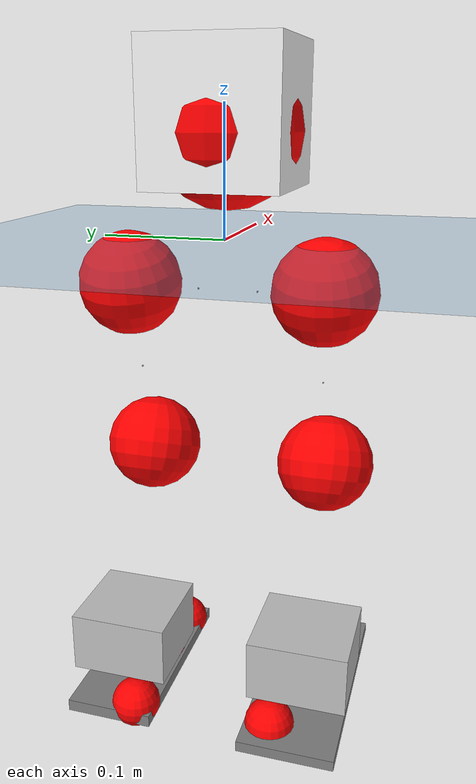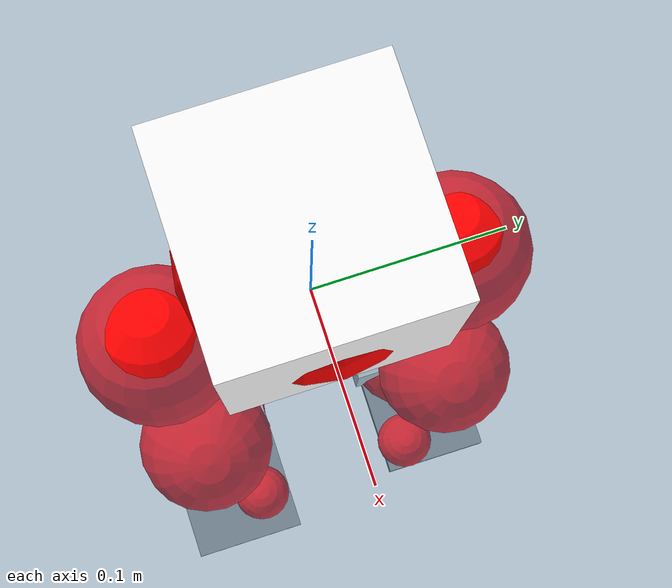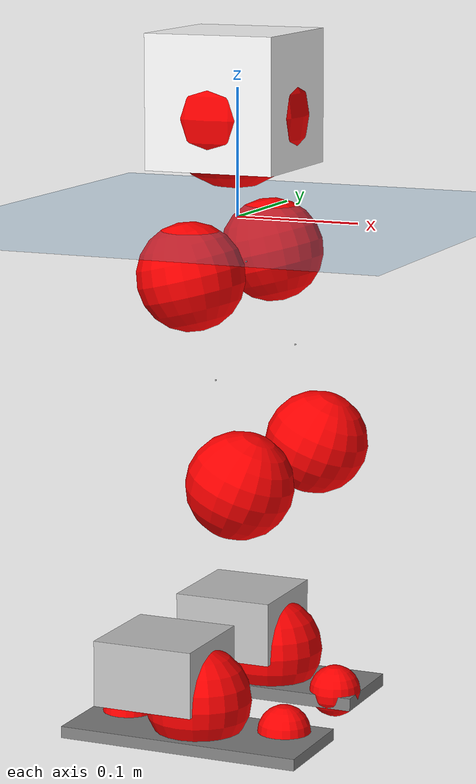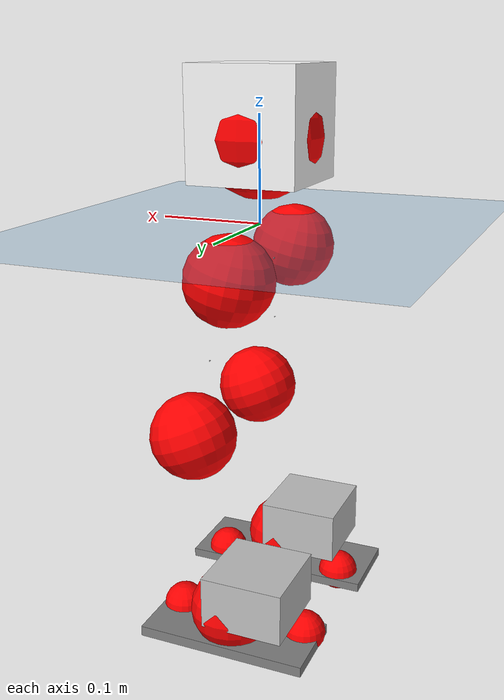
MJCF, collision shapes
<mujoco model="pi_12dof_release_v1">
  <compiler angle="radian" assetdir="assets" balanceinertia="true" inertiafromgeom="false"/>

  <option timestep="0.005" density="1.2" viscosity="2e-05"/>

  <size nkey="1"/>

  <visual>
    <quality shadowsize="8192"/>
    <map shadowclip="0.5"/>
  </visual>

  <default>
    <default class="/">
      <joint armature="0.01" damping="0.01" frictionloss="0.01"/>
      <geom contype="0" conaffinity="0" group="1" solref="-1000 -80"/>
      <site size="0.01 0.005 0.005" group="5"/>
      <general forcelimited="true" biastype="affine" gainprm="20" biasprm="0 -20 -0.5"/>
      <default class="foot">
        <geom size="0.0845 0.036 0.005" type="box" condim="6" group="4" priority="1" friction="0.9 0.2 0.2" solimp="0.015 1 0.005"/>
      </default>
      <default class="reward_collision_sphere">
        <geom group="5" rgba="1 0 0 1"/>
      </default>
    </default>
  </default>

  <asset>
    <texture type="skybox" colorspace="auto" name="//unnamed_texture_0" builtin="gradient" rgb1="0.95 0.95 0.95" rgb2="0.95 0.95 0.95" width="100" height="600"/>
    <texture type="2d" colorspace="auto" name="texplane" builtin="checker" rgb1="0.345 0.575 0.748" rgb2="0.345 0.575 0.748" markrgb="1 1 1" width="512" height="512"/>
    <material name="MatPlane" class="/" texture="texplane" texuniform="true" texrepeat="2 2" specular="0.9"/>
    <mesh name="baselink_1" class="/" file="baselink_1.STL"/>
    <mesh name="r_hip_pitch_link" class="/" file="r_hip_pitch_link.STL"/>
    <mesh name="r_hip_roll_link" class="/" file="r_hip_roll_link.STL"/>
    <mesh name="r_thigh_link" class="/" file="r_thigh_link.STL"/>
    <mesh name="r_calf_link" class="/" file="r_calf_link.STL"/>
    <mesh name="r_ankle_pitch_link" class="/" file="r_ankle_pitch_link.STL"/>
    <mesh name="r_ankle_roll_link" class="/" file="r_ankle_roll_link.STL"/>
    <mesh name="l_hip_pitch_link" class="/" file="l_hip_pitch_link.STL"/>
    <mesh name="l_hip_roll_link" class="/" file="l_hip_roll_link.STL"/>
    <mesh name="l_thigh_link" class="/" file="l_thigh_link.STL"/>
    <mesh name="l_calf_link" class="/" file="l_calf_link.STL"/>
    <mesh name="l_ankle_pitch_link" class="/" file="l_ankle_pitch_link.STL"/>
    <mesh name="l_ankle_roll_link" class="/" file="l_ankle_roll_link.STL"/>
  </asset>

  <worldbody>
    <geom name="floor" class="/" size="100 100 0.125" type="plane" group="0" material="MatPlane"/>
    <light name="toplight_shadow" class="/" pos="0 0 5" dir="0.0990148 0.0990148 -0.990148" type="directional" ambient="0.04 0.04 0.04" diffuse="0.55 0.55 0.55" specular="0.12 0.12 0.12"/>
    <light name="toplight_fill" class="/" pos="0 0 5" dir="0.0990148 0.0990148 -0.990148" type="directional" castshadow="false" ambient="0.04 0.04 0.04" diffuse="0.3 0.3 0.3" specular="0.08 0.08 0.08"/>
    <body name="trunk" pos="-0.000915858 -0.00270212 -0.00218126" quat="0.999999 0.0010496 -0.000369813 0.000136003">
      <inertial pos="0.00185027 -0.0017601 0.0478901" quat="0.692454 0.0165839 0.00235781 0.721267" mass="2.49759" diaginertia="0.00901548 0.00754184 0.00950518"/>
      <joint name="//unnamed_joint_0" type="free"/>
      <geom name="//unnamed_geom_1" class="/" type="mesh" density="0" rgba="1 1 1 1" mesh="baselink_1"/>
      <geom name="//unnamed_geom_2" class="/" size="0.0521261 0.0521261 0.0521261" pos="0 0 0.0939218" type="box" rgba="1 1 1 1"/>
      <geom name="//unnamed_geom_3" class="reward_collision_sphere" size="0.0573387" pos="0 0 0.0821816"/>
      <site name="imu" class="/" pos="-0.00299067 0.00993672 -0.00574618" size="0.0104252"/>
      <camera name="track" class="/" pos="0 -1.93411 0" quat="0.707107 0.707107 0 0" mode="trackcom"/>
      <camera name="ego_camera" class="/" pos="0.0739866 0 0.211324" quat="-0.5 -0.5 0.5 0.5"/>
      <body name="r_hip_pitch_link" pos="-0.00245439 -0.0249814 -0.0356584" quat="0.992163 0.000288748 -0.124952 -0.000305112">
        <inertial pos="0.000634152 -0.056919 -0.00270571" quat="-0.0169764 0.704149 -0.0319921 0.709128" mass="0.431979" diaginertia="0.00010405 8.34553e-05 0.000196072"/>
        <joint name="r_hip_pitch_joint" class="/" pos="0 0 0" axis="-0.00272468 -0.999926 -0.0118657" stiffness="0.00413573" range="-1.75198 1.28142" armature="0.0102919" damping="0.00537733" frictionloss="0.0118158"/>
        <geom name="//unnamed_geom_4" class="/" type="mesh" density="0" rgba="0.75294 0.75294 0.75294 1" mesh="r_hip_pitch_link"/>
        <geom name="//unnamed_geom_5" class="/" size="0.000521261 0.000521261 0.000521261" type="box" rgba="0.75294 0.75294 0.75294 1"/>
        <body name="r_hip_roll_link" pos="0.00086446 -0.05306 0.00239376" quat="1 -1.41009e-05 4.69032e-05 7.5616e-06">
          <inertial pos="-0.000921932 -0.00112371 -0.0698078" quat="0.709476 -0.0796803 -0.0817231 0.695425" mass="0.437598" diaginertia="0.000317724 0.000239734 0.000280348"/>
          <joint name="r_hip_roll_joint" class="/" pos="0 0 0" axis="-1 0.000345106 0.00075155" stiffness="0.0102904" range="-0.163397 0.550941" armature="0.00956256" damping="0" frictionloss="0.0100468"/>
          <geom name="//unnamed_geom_6" class="/" type="mesh" density="0" rgba="0.75294 0.75294 0.75294 1" mesh="r_hip_roll_link"/>
          <geom name="//unnamed_geom_7" class="/" size="0.000521261 0.000521261 0.000521261" type="box" rgba="0.75294 0.75294 0.75294 1"/>
          <geom name="//unnamed_geom_8" class="reward_collision_sphere" size="0.0417009"/>
          <body name="r_thigh_link" pos="-0.000315209 0.0015933 -0.0805545" quat="0.999999 -0.000994634 0.000220951 0.000922213">
            <inertial pos="0.0029509 0.00337521 -0.0582605" quat="0.742982 0.669309 -0.00203675 5.18458e-05" mass="0.130038" diaginertia="0.000114597 8.29852e-05 0.000125019"/>
            <joint name="r_thigh_joint" class="/" pos="0 0 0" axis="0.00197773 0.0106246 -0.999942" stiffness="0.00217943" range="-0.297988 0.652233" armature="0.00939482" damping="0.0178535" frictionloss="0.0109471"/>
            <geom name="//unnamed_geom_9" class="/" type="mesh" density="0" rgba="0.75294 0.75294 0.75294 1" mesh="r_thigh_link"/>
            <geom name="//unnamed_geom_10" class="/" size="0.000521261 0.000521261 0.000521261" type="box" rgba="0.75294 0.75294 0.75294 1"/>
            <body name="r_calf_link" pos="-2.19256e-05 -0.00107086 -0.0822326" quat="0.947383 5.0174e-05 0.320102 -0.00100694">
              <inertial pos="0.00202926 0.000536024 -0.0819497" quat="0.999955 -0.00758706 0.000514378 0.00560215" mass="0.948071" diaginertia="0.00341615 0.00304243 0.00038835"/>
              <joint name="r_calf_joint" class="/" pos="0 0 0" axis="0.00203837 -0.999986 0.00484055" stiffness="0.00368734" range="-1.63241 0.610763" armature="0.0105465" damping="0.00793619" frictionloss="0.0105843"/>
              <geom name="//unnamed_geom_11" class="/" type="mesh" density="0" rgba="0.75294 0.75294 0.75294 1" mesh="r_calf_link"/>
              <geom name="//unnamed_geom_12" class="/" size="0.000521261 0.000521261 0.000521261" type="box" rgba="0.75294 0.75294 0.75294 1"/>
              <geom name="//unnamed_geom_13" class="reward_collision_sphere" size="0.0417009"/>
              <body name="r_ankle_pitch_link" pos="-0.000150076 -0.000204952 -0.162637" quat="0.980076 -0.000541755 -0.198622 -0.000208055">
                <inertial pos="0.00205214 0.00317378 -0.00161102" quat="0.00439736 0.706515 -0.00355261 0.707676" mass="0.193796" diaginertia="0.000281392 0.000177363 0.000253166"/>
                <joint name="r_ankle_pitch_joint" class="/" pos="0 0 0" axis="-0.00217525 -0.999997 0.00133003" range="-1.34263 0.548944" armature="0.0106494" damping="0.0145404" frictionloss="0.00899245"/>
                <geom name="//unnamed_geom_14" class="/" type="mesh" density="0" rgba="0.75294 0.75294 0.75294 1" mesh="r_ankle_pitch_link"/>
                <geom name="//unnamed_geom_15" class="/" size="0.0406583 0.0417009 0.026063" type="box" rgba="0.75294 0.75294 0.75294 1"/>
                <body name="r_ankle_roll_link" pos="0.0773801 0.00177789 -0.000198592" quat="1 -6.11928e-05 -2.59863e-05 -1.83478e-05">
                  <inertial pos="-0.0204934 0.000225876 -0.0182736" quat="0.560887 0.430543 0.435516 0.557104" mass="0.611718" diaginertia="0.00111253 0.000866317 0.000641598"/>
                  <joint name="r_ankle_roll_joint" class="/" pos="0 0 0" axis="-0.999997 0.000234853 -0.00240851" range="-0.130187 0.109079" armature="0.0103732" damping="0" frictionloss="0.0103328"/>
                  <geom name="//unnamed_geom_16" class="/" type="mesh" density="0" rgba="0.75294 0.75294 0.75294 1" mesh="r_ankle_roll_link"/>
                  <geom name="//unnamed_geom_17" class="/" type="mesh" rgba="0.75294 0.75294 0.75294 1" mesh="r_ankle_roll_link"/>
                  <geom name="right_foot" class="foot" size="0.0979679 0.0404144 0.00460288" pos="-0.0503109 0 -0.051657"/>
                  <geom name="//unnamed_geom_19" class="reward_collision_sphere" size="0.0417009" pos="-0.0493244 0 -0.0234804"/>
                  <geom name="//unnamed_geom_20" class="reward_collision_sphere" size="0.0208504" pos="0.0147973 0.0193411 -0.0469609"/>
                  <geom name="//unnamed_geom_21" class="reward_collision_sphere" size="0.0208504" pos="-0.118379 0.0193411 -0.0469609"/>
                  <site name="right_foot" class="foot" pos="-0.0503109 0 -0.051657" size="0.0104252"/>
                </body>
              </body>
            </body>
          </body>
        </body>
      </body>
      <body name="l_hip_pitch_link" pos="-0.000872274 0.0237201 -0.036206" quat="0.992209 -0.000113825 -0.124585 -0.000245128">
        <inertial pos="0.00173569 0.0512087 -0.000942459" quat="-0.0389331 0.705965 0.0301502 0.706533" mass="0.439457" diaginertia="0.000118794 9.0704e-05 0.000219288"/>
        <joint name="l_hip_pitch_joint" class="/" pos="0 0 0" axis="-0.00278202 0.999996 0.000694125" range="-1.19078 1.73667" armature="0.0117084" damping="0" frictionloss="0.0116588"/>
        <geom name="//unnamed_geom_22" class="/" type="mesh" density="0" rgba="0.75294 0.75294 0.75294 1" mesh="l_hip_pitch_link"/>
        <geom name="//unnamed_geom_23" class="/" size="0.000521261 0.000521261 0.000521261" type="box" rgba="0.75294 0.75294 0.75294 1"/>
        <body name="l_hip_roll_link" pos="-0.00150709 0.0567018 0.00226652" quat="1 0.0003897 -0.000184171 -0.000445856">
          <inertial pos="-0.00117979 0.000478299 -0.072143" quat="0.702841 -0.0675758 -0.0788509 0.703726" mass="0.428692" diaginertia="0.000316164 0.000227703 0.000292759"/>
          <joint name="l_hip_roll_joint" class="/" pos="0 0 0" axis="-0.999943 -0.00465681 0.00959719" range="-0.530775 0.0716531" armature="0.011748" damping="0.00882496" frictionloss="0.011821"/>
          <geom name="//unnamed_geom_24" class="/" type="mesh" density="0" rgba="0.75294 0.75294 0.75294 1" mesh="l_hip_roll_link"/>
          <geom name="//unnamed_geom_25" class="/" size="0.000521261 0.000521261 0.000521261" type="box" rgba="0.75294 0.75294 0.75294 1"/>
          <geom name="//unnamed_geom_26" class="reward_collision_sphere" size="0.0417009"/>
          <body name="l_thigh_link" pos="0.000784738 0.000513269 -0.0789179" quat="1 0.000493711 0.000274551 0.000130342">
            <inertial pos="0.000222605 -0.00140347 -0.0529656" quat="0.675907 0.736987 -0.000187909 0.000208038" mass="0.128683" diaginertia="0.000116546 7.96623e-05 0.000131389"/>
            <joint name="l_thigh_joint" class="/" pos="0 0 0" axis="-0.000351135 0.000918372 -1" stiffness="0.00108688" range="-0.60291 0.307954" armature="0.00882106" damping="0.00833005" frictionloss="0.0107087"/>
            <geom name="//unnamed_geom_27" class="/" type="mesh" density="0" rgba="0.75294 0.75294 0.75294 1" mesh="l_thigh_link"/>
            <geom name="//unnamed_geom_28" class="/" size="0.000521261 0.000521261 0.000521261" type="box" rgba="0.75294 0.75294 0.75294 1"/>
            <body name="l_calf_link" pos="-0.00042376 -0.00161728 -0.0806231" quat="0.947519 -0.000503512 0.319697 -0.00119392">
              <inertial pos="0.000341994 0.00573297 -0.0817836" quat="0.999986 -0.00308092 0.00350319 0.00255895" mass="0.923873" diaginertia="0.00341879 0.00307585 0.000379882"/>
              <joint name="l_calf_joint" class="/" pos="0 0 0" axis="0.00222817 0.999996 -0.00180043" range="-0.649613 1.64269" armature="0.0101494" damping="0.0140799" frictionloss="0.0108393"/>
              <geom name="//unnamed_geom_29" class="/" type="mesh" density="0" rgba="0.75294 0.75294 0.75294 1" mesh="l_calf_link"/>
              <geom name="//unnamed_geom_30" class="/" size="0.000521261 0.000521261 0.000521261" type="box" rgba="0.75294 0.75294 0.75294 1"/>
              <geom name="//unnamed_geom_31" class="reward_collision_sphere" size="0.0417009"/>
              <body name="l_ankle_pitch_link" pos="0.00039582 -0.00146628 -0.166836" quat="0.98023 0.000968632 -0.197858 -0.000140334">
                <inertial pos="0.00514327 -0.00357308 -0.00064133" quat="-0.00105268 0.705941 0.000730583 0.70827" mass="0.187832" diaginertia="0.000271884 0.000181787 0.000255458"/>
                <joint name="l_ankle_pitch_joint" class="/" pos="0 0 0" axis="-0.000122983 1 0.000174087" range="-0.510321 1.29633" armature="0.0102336" damping="0.0153722" frictionloss="0.0116705"/>
                <geom name="//unnamed_geom_32" class="/" type="mesh" density="0" rgba="0.75294 0.75294 0.75294 1" mesh="l_ankle_pitch_link"/>
                <geom name="//unnamed_geom_33" class="/" size="0.0406583 0.0417009 0.026063" type="box" rgba="0.75294 0.75294 0.75294 1"/>
                <body name="l_ankle_roll_link" pos="0.0747595 0.00219266 0.000203999" quat="1 6.54823e-05 -9.90283e-05 -5.34597e-05">
                  <inertial pos="-0.023499 0.000755921 -0.0141958" quat="0.555917 0.440407 0.432129 0.557012" mass="0.585172" diaginertia="0.00108472 0.000836352 0.000648071"/>
                  <joint name="l_ankle_roll_joint" class="/" pos="0 0 0" axis="-0.999931 -0.0111779 0.00355631" range="-0.178926 0.151235" armature="0.00988817" damping="0.0238271" frictionloss="0.0108959"/>
                  <geom name="//unnamed_geom_34" class="/" type="mesh" density="0" rgba="0.75294 0.75294 0.75294 1" mesh="l_ankle_roll_link"/>
                  <geom name="//unnamed_geom_35" class="/" type="mesh" rgba="0.75294 0.75294 0.75294 1" mesh="l_ankle_roll_link"/>
                  <geom name="left_foot" class="foot" size="0.085125 0.0374432 0.00523117" pos="-0.0503109 0 -0.051657"/>
                  <geom name="//unnamed_geom_37" class="reward_collision_sphere" size="0.0417009" pos="-0.0493244 0 -0.0234804"/>
                  <geom name="//unnamed_geom_38" class="reward_collision_sphere" size="0.0208504" pos="0.0147973 -0.0193411 -0.0469609"/>
                  <geom name="//unnamed_geom_39" class="reward_collision_sphere" size="0.0208504" pos="-0.118379 -0.0193411 -0.0469609"/>
                  <site name="left_foot" class="foot" pos="-0.0503109 0 -0.051657" size="0.0104252"/>
                </body>
              </body>
            </body>
          </body>
        </body>
      </body>
    </body>
  </worldbody>

  <contact>
    <pair class="/" geom1="floor" geom2="right_foot" name="//unnamed_contact_1"/>
    <pair class="/" geom1="floor" geom2="left_foot" name="//unnamed_contact_0"/>
  </contact>

  <actuator>
    <general name="r_hip_pitch_joint" class="/" joint="r_hip_pitch_joint" forcerange="-21.5908 21.5908" gainprm="20.6863" biasprm="0 -20.6863 -0.483594"/>
    <general name="r_hip_roll_joint" class="/" joint="r_hip_roll_joint" forcerange="-21.9312 21.9312" gainprm="20.6863" biasprm="0 -20.6863 -0.483594"/>
    <general name="r_thigh_joint" class="/" joint="r_thigh_joint" forcerange="-21.5766 21.5766" gainprm="20.6863" biasprm="0 -20.6863 -0.483594"/>
    <general name="r_calf_joint" class="/" joint="r_calf_joint" forcerange="-21.8744 21.8744" gainprm="20.6863" biasprm="0 -20.6863 -0.483594"/>
    <general name="r_ankle_pitch_joint" class="/" joint="r_ankle_pitch_joint" forcerange="-22.0615 22.0615" gainprm="20.6863" biasprm="0 -20.6863 -0.483594"/>
    <general name="r_ankle_roll_joint" class="/" joint="r_ankle_roll_joint" forcerange="-21.7721 21.7721" gainprm="20.6863" biasprm="0 -20.6863 -0.483594"/>
    <general name="l_hip_pitch_joint" class="/" joint="l_hip_pitch_joint" forcerange="-22.6016 22.6016" gainprm="20.6863" biasprm="0 -20.6863 -0.483594"/>
    <general name="l_hip_roll_joint" class="/" joint="l_hip_roll_joint" forcerange="-19.6834 19.6834" gainprm="20.6863" biasprm="0 -20.6863 -0.483594"/>
    <general name="l_thigh_joint" class="/" joint="l_thigh_joint" forcerange="-22.0332 22.0332" gainprm="20.6863" biasprm="0 -20.6863 -0.483594"/>
    <general name="l_calf_joint" class="/" joint="l_calf_joint" forcerange="-22.0924 22.0924" gainprm="20.6863" biasprm="0 -20.6863 -0.483594"/>
    <general name="l_ankle_pitch_joint" class="/" joint="l_ankle_pitch_joint" forcerange="-22.0711 22.0711" gainprm="20.6863" biasprm="0 -20.6863 -0.483594"/>
    <general name="l_ankle_roll_joint" class="/" joint="l_ankle_roll_joint" forcerange="-19.8034 19.8034" gainprm="20.6863" biasprm="0 -20.6863 -0.483594"/>
  </actuator>

  <sensor>
    <gyro site="imu" name="imu_angular_velocity"/>
    <velocimeter site="imu" name="imu_linear_velocity"/>
    <framelinvel objtype="site" objname="left_foot" name="left_foot_global_linear_velocity"/>
    <framelinvel objtype="site" objname="right_foot" name="right_foot_global_linear_velocity"/>
  </sensor>

  <keyframe>
    <key name="home" qpos="0 0 0.291 1 0 0 0 0.4 0 0 -0.8 0.4 0 -0.4 0 0 0.8 -0.4 0"/>
  </keyframe>
</mujoco>
